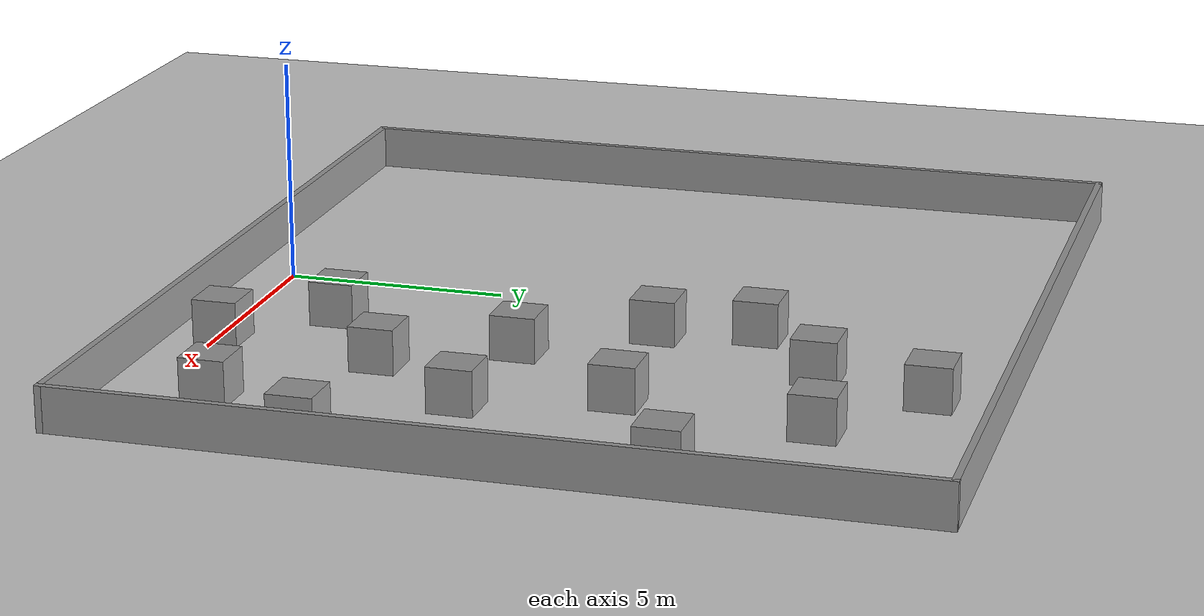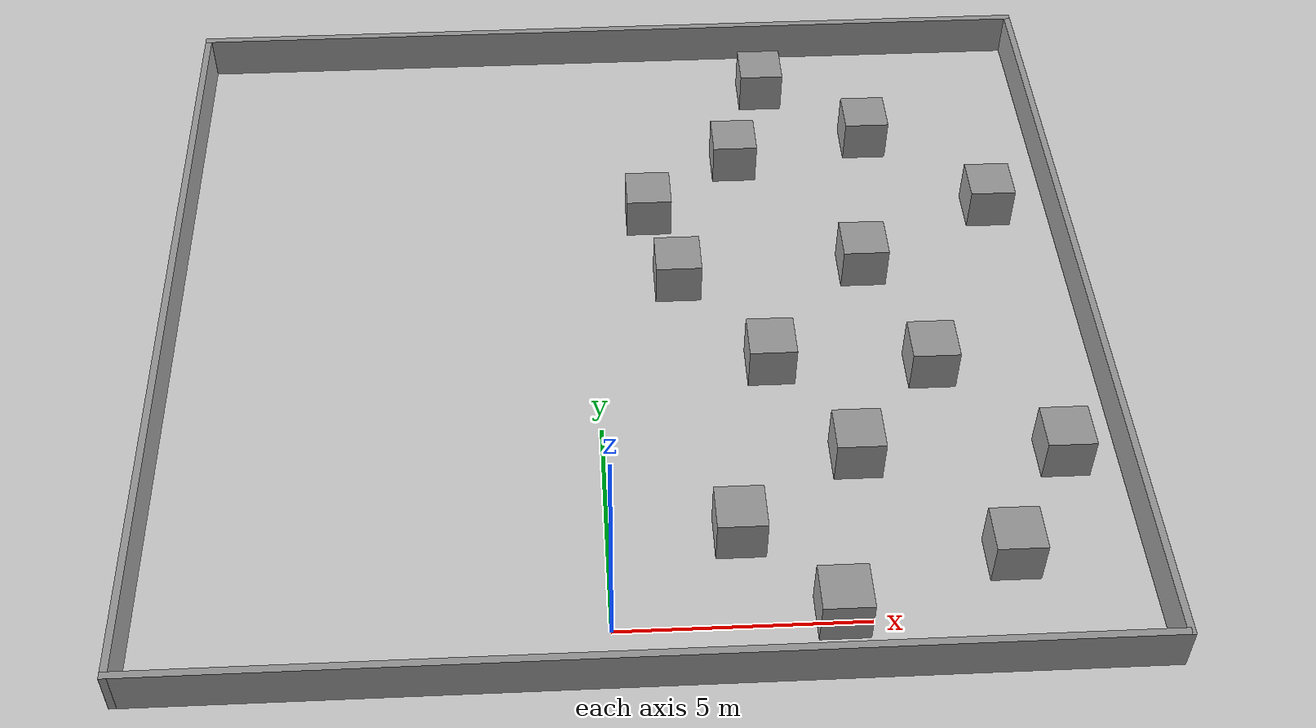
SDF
<sdf version="1.6">
 <world name="default">
  <model name="ground_plane">
   <static>1</static>
   <link name="link">
    <collision name="collision">
     <geometry><plane><normal>0 0 1</normal><size>100 100</size></plane></geometry>
     <surface><friction><ode><mu>100</mu><mu2>50</mu2></ode></friction></surface>
    </collision>
    <visual name="visual">
     <cast_shadows>0</cast_shadows>
     <geometry><plane><normal>0 0 1</normal><size>100 100</size></plane></geometry>
     <material>
      <script><uri>file://media/materials/scripts/gazebo.material</uri><name>Gazebo/Grey</name></script>
     </material>
    </visual>
   </link>
  </model>
  <model name="map1">
   <pose>0.69437 8.01298 0 0 -0 0</pose>
   <link name="Wall_0">
    <collision name="Wall_0_Collision">
     <geometry><box><size>20 0.15 1</size></box></geometry>
     <pose>0 0 0.5 0 -0 0</pose>
    </collision>
    <visual name="Wall_0_Visual">
     <pose>0 0 0.5 0 -0 0</pose>
     <geometry><box><size>20 0.15 1</size></box></geometry>
     <material>
      <script><uri>file://media/materials/scripts/gazebo.material</uri><name>Gazebo/Grey</name></script>
      <ambient>1 1 1 1</ambient>
     </material>
     <meta><layer>0</layer></meta>
    </visual>
    <pose>0 9.175 0 0 -0 0</pose>
   </link>
   <link name="Wall_3">
    <collision name="Wall_3_Collision">
     <geometry><box><size>18.5 0.15 1</size></box></geometry>
     <pose>0 0 0.5 0 -0 0</pose>
    </collision>
    <visual name="Wall_3_Visual">
     <pose>0 0 0.5 0 -0 0</pose>
     <geometry><box><size>18.5 0.15 1</size></box></geometry>
     <material>
      <script><uri>file://media/materials/scripts/gazebo.material</uri><name>Gazebo/Grey</name></script>
      <ambient>1 1 1 1</ambient>
     </material>
     <meta><layer>0</layer></meta>
    </visual>
    <pose>9.925 0 0 0 -0 -1.5708</pose>
   </link>
   <link name="Wall_4">
    <collision name="Wall_4_Collision">
     <geometry><box><size>20 0.15 1</size></box></geometry>
     <pose>0 0 0.5 0 -0 0</pose>
    </collision>
    <visual name="Wall_4_Visual">
     <pose>0 0 0.5 0 -0 0</pose>
     <geometry><box><size>20 0.15 1</size></box></geometry>
     <material>
      <script><uri>file://media/materials/scripts/gazebo.material</uri><name>Gazebo/Grey</name></script>
      <ambient>1 1 1 1</ambient>
     </material>
     <meta><layer>0</layer></meta>
    </visual>
    <pose>0 -9.175 0 0 -0 3.14159</pose>
   </link>
   <link name="Wall_5">
    <collision name="Wall_5_Collision">
     <geometry><box><size>18.5 0.15 1</size></box></geometry>
     <pose>0 0 0.5 0 -0 0</pose>
    </collision>
    <visual name="Wall_5_Visual">
     <pose>0 0 0.5 0 -0 0</pose>
     <geometry><box><size>18.5 0.15 1</size></box></geometry>
     <material>
      <script><uri>file://media/materials/scripts/gazebo.material</uri><name>Gazebo/Grey</name></script>
      <ambient>1 1 1 1</ambient>
     </material>
     <meta><layer>0</layer></meta>
    </visual>
    <pose>-9.925 0 0 0 -0 1.5708</pose>
   </link>
   <static>1</static>
  </model>
  <model name="box_1_clone_2">
   <link name="link_3">
    <inertial>
     <mass>1</mass>
     <inertia>
      <ixx>0.166667</ixx>
      <ixy>0</ixy>
      <ixz>0</ixz>
      <iyy>0.166667</iyy>
      <iyz>0</iyz>
      <izz>0.166667</izz>
     </inertia>
    </inertial>
    <pose>-0.10623 1.19174 0.5 0 -0 0</pose>
    <visual name="visual">
     <geometry><box><size>1 1 1</size></box></geometry>
     <material>
      <lighting>1</lighting>
      <script><uri>file://media/materials/scripts/gazebo.material</uri><name>Gazebo/Grey</name></script>
      <shader type="pixel"/>
     </material>
    </visual>
    <collision name="collision">
     <geometry><box><size>1 1 1</size></box></geometry>
     <surface>
      <friction>
       <ode><mu>1</mu><mu2>1</mu2><fdir1>0 0 0</fdir1><slip1>0</slip1><slip2>0</slip2></ode>
       <torsional>
        <coefficient>1</coefficient>
        <patch_radius>0</patch_radius>
        <surface_radius>0</surface_radius>
        <use_patch_radius>1</use_patch_radius>
        <ode><slip>0</slip></ode>
       </torsional>
      </friction>
      <bounce><restitution_coefficient>0</restitution_coefficient><threshold>1e+06</threshold></bounce>
      <contact>
       <collide_without_contact>0</collide_without_contact>
       <collide_without_contact_bitmask>1</collide_without_contact_bitmask>
       <collide_bitmask>1</collide_bitmask>
       <ode>
        <soft_cfm>0</soft_cfm>
        <soft_erp>0.2</soft_erp>
        <kp>1e+13</kp>
        <kd>1</kd>
        <max_vel>0.01</max_vel>
        <min_depth>0</min_depth>
       </ode>
       <bullet>
        <split_impulse>1</split_impulse>
        <split_impulse_penetration_threshold>-0.01</split_impulse_penetration_threshold>
        <soft_cfm>0</soft_cfm>
        <soft_erp>0.2</soft_erp>
        <kp>1e+13</kp>
        <kd>1</kd>
       </bullet>
      </contact>
     </surface>
    </collision>
   </link>
   <static>0</static>
   <pose>2.70949 0.917805 0 0 -0 0</pose>
  </model>
  <model name="box_1_clone_5">
   <link name="link_3">
    <inertial>
     <mass>1</mass>
     <inertia>
      <ixx>0.166667</ixx>
      <ixy>0</ixy>
      <ixz>0</ixz>
      <iyy>0.166667</iyy>
      <iyz>0</iyz>
      <izz>0.166667</izz>
     </inertia>
    </inertial>
    <pose>-0.10623 1.19174 0.5 0 -0 0</pose>
    <visual name="visual">
     <geometry><box><size>1 1 1</size></box></geometry>
     <material>
      <lighting>1</lighting>
      <script><uri>file://media/materials/scripts/gazebo.material</uri><name>Gazebo/Grey</name></script>
      <shader type="pixel"/>
     </material>
    </visual>
    <collision name="collision">
     <geometry><box><size>1 1 1</size></box></geometry>
     <surface>
      <friction>
       <ode><mu>1</mu><mu2>1</mu2><fdir1>0 0 0</fdir1><slip1>0</slip1><slip2>0</slip2></ode>
       <torsional>
        <coefficient>1</coefficient>
        <patch_radius>0</patch_radius>
        <surface_radius>0</surface_radius>
        <use_patch_radius>1</use_patch_radius>
        <ode><slip>0</slip></ode>
       </torsional>
      </friction>
      <bounce><restitution_coefficient>0</restitution_coefficient><threshold>1e+06</threshold></bounce>
      <contact>
       <collide_without_contact>0</collide_without_contact>
       <collide_without_contact_bitmask>1</collide_without_contact_bitmask>
       <collide_bitmask>1</collide_bitmask>
       <ode>
        <soft_cfm>0</soft_cfm>
        <soft_erp>0.2</soft_erp>
        <kp>1e+13</kp>
        <kd>1</kd>
        <max_vel>0.01</max_vel>
        <min_depth>0</min_depth>
       </ode>
       <bullet>
        <split_impulse>1</split_impulse>
        <split_impulse_penetration_threshold>-0.01</split_impulse_penetration_threshold>
        <soft_cfm>0</soft_cfm>
        <soft_erp>0.2</soft_erp>
        <kp>1e+13</kp>
        <kd>1</kd>
       </bullet>
      </contact>
     </surface>
    </collision>
   </link>
   <static>0</static>
   <pose>4.51321 -1.05576 0 0 -0 0</pose>
  </model>
  <model name="box_1_clone_8">
   <link name="link_3">
    <inertial>
     <mass>1</mass>
     <inertia>
      <ixx>0.166667</ixx>
      <ixy>0</ixy>
      <ixz>0</ixz>
      <iyy>0.166667</iyy>
      <iyz>0</iyz>
      <izz>0.166667</izz>
     </inertia>
    </inertial>
    <pose>-0.10623 1.19174 0.5 0 -0 0</pose>
    <visual name="visual">
     <geometry><box><size>1 1 1</size></box></geometry>
     <material>
      <lighting>1</lighting>
      <script><uri>file://media/materials/scripts/gazebo.material</uri><name>Gazebo/Grey</name></script>
      <shader type="pixel"/>
     </material>
    </visual>
    <collision name="collision">
     <geometry><box><size>1 1 1</size></box></geometry>
     <surface>
      <friction>
       <ode><mu>1</mu><mu2>1</mu2><fdir1>0 0 0</fdir1><slip1>0</slip1><slip2>0</slip2></ode>
       <torsional>
        <coefficient>1</coefficient>
        <patch_radius>0</patch_radius>
        <surface_radius>0</surface_radius>
        <use_patch_radius>1</use_patch_radius>
        <ode><slip>0</slip></ode>
       </torsional>
      </friction>
      <bounce><restitution_coefficient>0</restitution_coefficient><threshold>1e+06</threshold></bounce>
      <contact>
       <collide_without_contact>0</collide_without_contact>
       <collide_without_contact_bitmask>1</collide_without_contact_bitmask>
       <collide_bitmask>1</collide_bitmask>
       <ode>
        <soft_cfm>0</soft_cfm>
        <soft_erp>0.2</soft_erp>
        <kp>1e+13</kp>
        <kd>1</kd>
        <max_vel>0.01</max_vel>
        <min_depth>0</min_depth>
       </ode>
       <bullet>
        <split_impulse>1</split_impulse>
        <split_impulse_penetration_threshold>-0.01</split_impulse_penetration_threshold>
        <soft_cfm>0</soft_cfm>
        <soft_erp>0.2</soft_erp>
        <kp>1e+13</kp>
        <kd>1</kd>
       </bullet>
      </contact>
     </surface>
    </collision>
   </link>
   <static>0</static>
   <pose>1.41263 10.1207 0 0 -0 0</pose>
  </model>
  <model name="box_1_clone_9">
   <link name="link_3">
    <inertial>
     <mass>1</mass>
     <inertia>
      <ixx>0.166667</ixx>
      <ixy>0</ixy>
      <ixz>0</ixz>
      <iyy>0.166667</iyy>
      <iyz>0</iyz>
      <izz>0.166667</izz>
     </inertia>
    </inertial>
    <pose>-0.10623 1.19174 0.5 0 -0 0</pose>
    <visual name="visual">
     <geometry><box><size>1 1 1</size></box></geometry>
     <material>
      <lighting>1</lighting>
      <script><uri>file://media/materials/scripts/gazebo.material</uri><name>Gazebo/Grey</name></script>
      <shader type="pixel"/>
     </material>
    </visual>
    <collision name="collision">
     <geometry><box><size>1 1 1</size></box></geometry>
     <surface>
      <friction>
       <ode><mu>1</mu><mu2>1</mu2><fdir1>0 0 0</fdir1><slip1>0</slip1><slip2>0</slip2></ode>
       <torsional>
        <coefficient>1</coefficient>
        <patch_radius>0</patch_radius>
        <surface_radius>0</surface_radius>
        <use_patch_radius>1</use_patch_radius>
        <ode><slip>0</slip></ode>
       </torsional>
      </friction>
      <bounce><restitution_coefficient>0</restitution_coefficient><threshold>1e+06</threshold></bounce>
      <contact>
       <collide_without_contact>0</collide_without_contact>
       <collide_without_contact_bitmask>1</collide_without_contact_bitmask>
       <collide_bitmask>1</collide_bitmask>
       <ode>
        <soft_cfm>0</soft_cfm>
        <soft_erp>0.2</soft_erp>
        <kp>1e+13</kp>
        <kd>1</kd>
        <max_vel>0.01</max_vel>
        <min_depth>0</min_depth>
       </ode>
       <bullet>
        <split_impulse>1</split_impulse>
        <split_impulse_penetration_threshold>-0.01</split_impulse_penetration_threshold>
        <soft_cfm>0</soft_cfm>
        <soft_erp>0.2</soft_erp>
        <kp>1e+13</kp>
        <kd>1</kd>
       </bullet>
      </contact>
     </surface>
    </collision>
   </link>
   <static>0</static>
   <pose>3.51116 11.8544 0 0 -0 0</pose>
  </model>
  <model name="box_1_clone_12">
   <link name="link_3">
    <inertial>
     <mass>1</mass>
     <inertia>
      <ixx>0.166667</ixx>
      <ixy>0</ixy>
      <ixz>0</ixz>
      <iyy>0.166667</iyy>
      <iyz>0</iyz>
      <izz>0.166667</izz>
     </inertia>
    </inertial>
    <pose>-0.10623 1.19174 0.5 0 -0 0</pose>
    <visual name="visual">
     <geometry><box><size>1 1 1</size></box></geometry>
     <material>
      <lighting>1</lighting>
      <script><uri>file://media/materials/scripts/gazebo.material</uri><name>Gazebo/Grey</name></script>
      <shader type="pixel"/>
     </material>
    </visual>
    <collision name="collision">
     <geometry><box><size>1 1 1</size></box></geometry>
     <surface>
      <friction>
       <ode><mu>1</mu><mu2>1</mu2><fdir1>0 0 0</fdir1><slip1>0</slip1><slip2>0</slip2></ode>
       <torsional>
        <coefficient>1</coefficient>
        <patch_radius>0</patch_radius>
        <surface_radius>0</surface_radius>
        <use_patch_radius>1</use_patch_radius>
        <ode><slip>0</slip></ode>
       </torsional>
      </friction>
      <bounce><restitution_coefficient>0</restitution_coefficient><threshold>1e+06</threshold></bounce>
      <contact>
       <collide_without_contact>0</collide_without_contact>
       <collide_without_contact_bitmask>1</collide_without_contact_bitmask>
       <collide_bitmask>1</collide_bitmask>
       <ode>
        <soft_cfm>0</soft_cfm>
        <soft_erp>0.2</soft_erp>
        <kp>1e+13</kp>
        <kd>1</kd>
        <max_vel>0.01</max_vel>
        <min_depth>0</min_depth>
       </ode>
       <bullet>
        <split_impulse>1</split_impulse>
        <split_impulse_penetration_threshold>-0.01</split_impulse_penetration_threshold>
        <soft_cfm>0</soft_cfm>
        <soft_erp>0.2</soft_erp>
        <kp>1e+13</kp>
        <kd>1</kd>
       </bullet>
      </contact>
     </surface>
    </collision>
   </link>
   <static>0</static>
   <pose>6.67943 12.5304 0 0 -0 0</pose>
  </model>
  <model name="box_1_clone_13">
   <link name="link_3">
    <inertial>
     <mass>1</mass>
     <inertia>
      <ixx>0.166667</ixx>
      <ixy>0</ixy>
      <ixz>0</ixz>
      <iyy>0.166667</iyy>
      <iyz>0</iyz>
      <izz>0.166667</izz>
     </inertia>
    </inertial>
    <pose>-0.10623 1.19174 0.5 0 -0 0</pose>
    <visual name="visual">
     <geometry><box><size>1 1 1</size></box></geometry>
     <material>
      <lighting>1</lighting>
      <script><uri>file://media/materials/scripts/gazebo.material</uri><name>Gazebo/Grey</name></script>
      <shader type="pixel"/>
     </material>
    </visual>
    <collision name="collision">
     <geometry><box><size>1 1 1</size></box></geometry>
     <surface>
      <friction>
       <ode><mu>1</mu><mu2>1</mu2><fdir1>0 0 0</fdir1><slip1>0</slip1><slip2>0</slip2></ode>
       <torsional>
        <coefficient>1</coefficient>
        <patch_radius>0</patch_radius>
        <surface_radius>0</surface_radius>
        <use_patch_radius>1</use_patch_radius>
        <ode><slip>0</slip></ode>
       </torsional>
      </friction>
      <bounce><restitution_coefficient>0</restitution_coefficient><threshold>1e+06</threshold></bounce>
      <contact>
       <collide_without_contact>0</collide_without_contact>
       <collide_without_contact_bitmask>1</collide_without_contact_bitmask>
       <collide_bitmask>1</collide_bitmask>
       <ode>
        <soft_cfm>0</soft_cfm>
        <soft_erp>0.2</soft_erp>
        <kp>1e+13</kp>
        <kd>1</kd>
        <max_vel>0.01</max_vel>
        <min_depth>0</min_depth>
       </ode>
       <bullet>
        <split_impulse>1</split_impulse>
        <split_impulse_penetration_threshold>-0.01</split_impulse_penetration_threshold>
        <soft_cfm>0</soft_cfm>
        <soft_erp>0.2</soft_erp>
        <kp>1e+13</kp>
        <kd>1</kd>
       </bullet>
      </contact>
     </surface>
    </collision>
   </link>
   <static>0</static>
   <pose>4.37159 14.4177 0 0 -0 0</pose>
  </model>
  <model name="box_1_clone_clone_2">
   <link name="link_3">
    <inertial>
     <mass>1</mass>
     <inertia>
      <ixx>0.166667</ixx>
      <ixy>0</ixy>
      <ixz>0</ixz>
      <iyy>0.166667</iyy>
      <iyz>0</iyz>
      <izz>0.166667</izz>
     </inertia>
    </inertial>
    <pose>-0.10623 1.19174 0.5 0 -0 0</pose>
    <visual name="visual">
     <geometry><box><size>1 1 1</size></box></geometry>
     <material>
      <lighting>1</lighting>
      <script><uri>file://media/materials/scripts/gazebo.material</uri><name>Gazebo/Grey</name></script>
      <shader type="pixel"/>
     </material>
    </visual>
    <collision name="collision">
     <geometry><box><size>1 1 1</size></box></geometry>
     <surface>
      <friction>
       <ode><mu>1</mu><mu2>1</mu2><fdir1>0 0 0</fdir1><slip1>0</slip1><slip2>0</slip2></ode>
       <torsional>
        <coefficient>1</coefficient>
        <patch_radius>0</patch_radius>
        <surface_radius>0</surface_radius>
        <use_patch_radius>1</use_patch_radius>
        <ode><slip>0</slip></ode>
       </torsional>
      </friction>
      <bounce><restitution_coefficient>0</restitution_coefficient><threshold>1e+06</threshold></bounce>
      <contact>
       <collide_without_contact>0</collide_without_contact>
       <collide_without_contact_bitmask>1</collide_without_contact_bitmask>
       <collide_bitmask>1</collide_bitmask>
       <ode>
        <soft_cfm>0</soft_cfm>
        <soft_erp>0.2</soft_erp>
        <kp>1e+13</kp>
        <kd>1</kd>
        <max_vel>0.01</max_vel>
        <min_depth>0</min_depth>
       </ode>
       <bullet>
        <split_impulse>1</split_impulse>
        <split_impulse_penetration_threshold>-0.01</split_impulse_penetration_threshold>
        <soft_cfm>0</soft_cfm>
        <soft_erp>0.2</soft_erp>
        <kp>1e+13</kp>
        <kd>1</kd>
       </bullet>
      </contact>
     </surface>
    </collision>
   </link>
   <static>0</static>
   <pose>3.75986 5.40354 0 0 -0 0</pose>
  </model>
  <model name="box_1_clone_clone_3">
   <link name="link_3">
    <inertial>
     <mass>1</mass>
     <inertia>
      <ixx>0.166667</ixx>
      <ixy>0</ixy>
      <ixz>0</ixz>
      <iyy>0.166667</iyy>
      <iyz>0</iyz>
      <izz>0.166667</izz>
     </inertia>
    </inertial>
    <pose>-0.10623 1.19174 0.5 0 -0 0</pose>
    <visual name="visual">
     <geometry><box><size>1 1 1</size></box></geometry>
     <material>
      <lighting>1</lighting>
      <script><uri>file://media/materials/scripts/gazebo.material</uri><name>Gazebo/Grey</name></script>
      <shader type="pixel"/>
     </material>
    </visual>
    <collision name="collision">
     <geometry><box><size>1 1 1</size></box></geometry>
     <surface>
      <friction>
       <ode><mu>1</mu><mu2>1</mu2><fdir1>0 0 0</fdir1><slip1>0</slip1><slip2>0</slip2></ode>
       <torsional>
        <coefficient>1</coefficient>
        <patch_radius>0</patch_radius>
        <surface_radius>0</surface_radius>
        <use_patch_radius>1</use_patch_radius>
        <ode><slip>0</slip></ode>
       </torsional>
      </friction>
      <bounce><restitution_coefficient>0</restitution_coefficient><threshold>1e+06</threshold></bounce>
      <contact>
       <collide_without_contact>0</collide_without_contact>
       <collide_without_contact_bitmask>1</collide_without_contact_bitmask>
       <collide_bitmask>1</collide_bitmask>
       <ode>
        <soft_cfm>0</soft_cfm>
        <soft_erp>0.2</soft_erp>
        <kp>1e+13</kp>
        <kd>1</kd>
        <max_vel>0.01</max_vel>
        <min_depth>0</min_depth>
       </ode>
       <bullet>
        <split_impulse>1</split_impulse>
        <split_impulse_penetration_threshold>-0.01</split_impulse_penetration_threshold>
        <soft_cfm>0</soft_cfm>
        <soft_erp>0.2</soft_erp>
        <kp>1e+13</kp>
        <kd>1</kd>
       </bullet>
      </contact>
     </surface>
    </collision>
   </link>
   <static>0</static>
   <pose>1.94598 7.97336 0 0 -0 0</pose>
  </model>
  <model name="box_1_clone_clone_4">
   <link name="link_3">
    <inertial>
     <mass>1</mass>
     <inertia>
      <ixx>0.166667</ixx>
      <ixy>0</ixy>
      <ixz>0</ixz>
      <iyy>0.166667</iyy>
      <iyz>0</iyz>
      <izz>0.166667</izz>
     </inertia>
    </inertial>
    <pose>-0.10623 1.19174 0.5 0 -0 0</pose>
    <visual name="visual">
     <geometry><box><size>1 1 1</size></box></geometry>
     <material>
      <lighting>1</lighting>
      <script><uri>file://media/materials/scripts/gazebo.material</uri><name>Gazebo/Grey</name></script>
      <shader type="pixel"/>
     </material>
    </visual>
    <collision name="collision">
     <geometry><box><size>1 1 1</size></box></geometry>
     <surface>
      <friction>
       <ode><mu>1</mu><mu2>1</mu2><fdir1>0 0 0</fdir1><slip1>0</slip1><slip2>0</slip2></ode>
       <torsional>
        <coefficient>1</coefficient>
        <patch_radius>0</patch_radius>
        <surface_radius>0</surface_radius>
        <use_patch_radius>1</use_patch_radius>
        <ode><slip>0</slip></ode>
       </torsional>
      </friction>
      <bounce><restitution_coefficient>0</restitution_coefficient><threshold>1e+06</threshold></bounce>
      <contact>
       <collide_without_contact>0</collide_without_contact>
       <collide_without_contact_bitmask>1</collide_without_contact_bitmask>
       <collide_bitmask>1</collide_bitmask>
       <ode>
        <soft_cfm>0</soft_cfm>
        <soft_erp>0.2</soft_erp>
        <kp>1e+13</kp>
        <kd>1</kd>
        <max_vel>0.01</max_vel>
        <min_depth>0</min_depth>
       </ode>
       <bullet>
        <split_impulse>1</split_impulse>
        <split_impulse_penetration_threshold>-0.01</split_impulse_penetration_threshold>
        <soft_cfm>0</soft_cfm>
        <soft_erp>0.2</soft_erp>
        <kp>1e+13</kp>
        <kd>1</kd>
       </bullet>
      </contact>
     </surface>
    </collision>
   </link>
   <static>0</static>
   <pose>7.16075 5.16116 0 0 -0 0</pose>
  </model>
  <model name="box_1_clone_clone_5">
   <link name="link_3">
    <inertial>
     <mass>1</mass>
     <inertia>
      <ixx>0.166667</ixx>
      <ixy>0</ixy>
      <ixz>0</ixz>
      <iyy>0.166667</iyy>
      <iyz>0</iyz>
      <izz>0.166667</izz>
     </inertia>
    </inertial>
    <pose>-0.10623 1.19174 0.5 0 -0 0</pose>
    <visual name="visual">
     <geometry><box><size>1 1 1</size></box></geometry>
     <material>
      <lighting>1</lighting>
      <script><uri>file://media/materials/scripts/gazebo.material</uri><name>Gazebo/Grey</name></script>
      <shader type="pixel"/>
     </material>
    </visual>
    <collision name="collision">
     <geometry><box><size>1 1 1</size></box></geometry>
     <surface>
      <friction>
       <ode><mu>1</mu><mu2>1</mu2><fdir1>0 0 0</fdir1><slip1>0</slip1><slip2>0</slip2></ode>
       <torsional>
        <coefficient>1</coefficient>
        <patch_radius>0</patch_radius>
        <surface_radius>0</surface_radius>
        <use_patch_radius>1</use_patch_radius>
        <ode><slip>0</slip></ode>
       </torsional>
      </friction>
      <bounce><restitution_coefficient>0</restitution_coefficient><threshold>1e+06</threshold></bounce>
      <contact>
       <collide_without_contact>0</collide_without_contact>
       <collide_without_contact_bitmask>1</collide_without_contact_bitmask>
       <collide_bitmask>1</collide_bitmask>
       <ode>
        <soft_cfm>0</soft_cfm>
        <soft_erp>0.2</soft_erp>
        <kp>1e+13</kp>
        <kd>1</kd>
        <max_vel>0.01</max_vel>
        <min_depth>0</min_depth>
       </ode>
       <bullet>
        <split_impulse>1</split_impulse>
        <split_impulse_penetration_threshold>-0.01</split_impulse_penetration_threshold>
        <soft_cfm>0</soft_cfm>
        <soft_erp>0.2</soft_erp>
        <kp>1e+13</kp>
        <kd>1</kd>
       </bullet>
      </contact>
     </surface>
    </collision>
   </link>
   <static>0</static>
   <pose>6.09938 8.2637 0 0 -0 0</pose>
  </model>
  <model name="box_1_clone_clone_6">
   <link name="link_3">
    <inertial>
     <mass>1</mass>
     <inertia>
      <ixx>0.166667</ixx>
      <ixy>0</ixy>
      <ixz>0</ixz>
      <iyy>0.166667</iyy>
      <iyz>0</iyz>
      <izz>0.166667</izz>
     </inertia>
    </inertial>
    <pose>-0.10623 1.19174 0.5 0 -0 0</pose>
    <visual name="visual">
     <geometry><box><size>1 1 1</size></box></geometry>
     <material>
      <lighting>1</lighting>
      <script><uri>file://media/materials/scripts/gazebo.material</uri><name>Gazebo/Grey</name></script>
      <shader type="pixel"/>
     </material>
    </visual>
    <collision name="collision">
     <geometry><box><size>1 1 1</size></box></geometry>
     <surface>
      <friction>
       <ode><mu>1</mu><mu2>1</mu2><fdir1>0 0 0</fdir1><slip1>0</slip1><slip2>0</slip2></ode>
       <torsional>
        <coefficient>1</coefficient>
        <patch_radius>0</patch_radius>
        <surface_radius>0</surface_radius>
        <use_patch_radius>1</use_patch_radius>
        <ode><slip>0</slip></ode>
       </torsional>
      </friction>
      <bounce><restitution_coefficient>0</restitution_coefficient><threshold>1e+06</threshold></bounce>
      <contact>
       <collide_without_contact>0</collide_without_contact>
       <collide_without_contact_bitmask>1</collide_without_contact_bitmask>
       <collide_bitmask>1</collide_bitmask>
       <ode>
        <soft_cfm>0</soft_cfm>
        <soft_erp>0.2</soft_erp>
        <kp>1e+13</kp>
        <kd>1</kd>
        <max_vel>0.01</max_vel>
        <min_depth>0</min_depth>
       </ode>
       <bullet>
        <split_impulse>1</split_impulse>
        <split_impulse_penetration_threshold>-0.01</split_impulse_penetration_threshold>
        <soft_cfm>0</soft_cfm>
        <soft_erp>0.2</soft_erp>
        <kp>1e+13</kp>
        <kd>1</kd>
       </bullet>
      </contact>
     </surface>
    </collision>
   </link>
   <static>0</static>
   <pose>5.26681 2.78551 0 0 -0 0</pose>
  </model>
  <model name="box_1_clone_clone_7">
   <link name="link_3">
    <inertial>
     <mass>1</mass>
     <inertia>
      <ixx>0.166667</ixx>
      <ixy>0</ixy>
      <ixz>0</ixz>
      <iyy>0.166667</iyy>
      <iyz>0</iyz>
      <izz>0.166667</izz>
     </inertia>
    </inertial>
    <pose>-0.10623 1.19174 0.5 0 -0 0</pose>
    <visual name="visual">
     <geometry><box><size>1 1 1</size></box></geometry>
     <material>
      <lighting>1</lighting>
      <script><uri>file://media/materials/scripts/gazebo.material</uri><name>Gazebo/Grey</name></script>
      <shader type="pixel"/>
     </material>
    </visual>
    <collision name="collision">
     <geometry><box><size>1 1 1</size></box></geometry>
     <surface>
      <friction>
       <ode><mu>1</mu><mu2>1</mu2><fdir1>0 0 0</fdir1><slip1>0</slip1><slip2>0</slip2></ode>
       <torsional>
        <coefficient>1</coefficient>
        <patch_radius>0</patch_radius>
        <surface_radius>0</surface_radius>
        <use_patch_radius>1</use_patch_radius>
        <ode><slip>0</slip></ode>
       </torsional>
      </friction>
      <bounce><restitution_coefficient>0</restitution_coefficient><threshold>1e+06</threshold></bounce>
      <contact>
       <collide_without_contact>0</collide_without_contact>
       <collide_without_contact_bitmask>1</collide_without_contact_bitmask>
       <collide_bitmask>1</collide_bitmask>
       <ode>
        <soft_cfm>0</soft_cfm>
        <soft_erp>0.2</soft_erp>
        <kp>1e+13</kp>
        <kd>1</kd>
        <max_vel>0.01</max_vel>
        <min_depth>0</min_depth>
       </ode>
       <bullet>
        <split_impulse>1</split_impulse>
        <split_impulse_penetration_threshold>-0.01</split_impulse_penetration_threshold>
        <soft_cfm>0</soft_cfm>
        <soft_erp>0.2</soft_erp>
        <kp>1e+13</kp>
        <kd>1</kd>
       </bullet>
      </contact>
     </surface>
    </collision>
   </link>
   <static>0</static>
   <pose>8.00041 0.143699 0 0 -0 0</pose>
  </model>
  <model name="box_1_clone_clone_9">
   <link name="link_3">
    <inertial>
     <mass>1</mass>
     <inertia>
      <ixx>0.166667</ixx>
      <ixy>0</ixy>
      <ixz>0</ixz>
      <iyy>0.166667</iyy>
      <iyz>0</iyz>
      <izz>0.166667</izz>
     </inertia>
    </inertial>
    <pose>-0.10623 1.19174 0.5 0 -0 0</pose>
    <visual name="visual">
     <geometry><box><size>1 1 1</size></box></geometry>
     <material>
      <lighting>1</lighting>
      <script><uri>file://media/materials/scripts/gazebo.material</uri><name>Gazebo/Grey</name></script>
      <shader type="pixel"/>
     </material>
    </visual>
    <collision name="collision">
     <geometry><box><size>1 1 1</size></box></geometry>
     <surface>
      <friction>
       <ode><mu>1</mu><mu2>1</mu2><fdir1>0 0 0</fdir1><slip1>0</slip1><slip2>0</slip2></ode>
       <torsional>
        <coefficient>1</coefficient>
        <patch_radius>0</patch_radius>
        <surface_radius>0</surface_radius>
        <use_patch_radius>1</use_patch_radius>
        <ode><slip>0</slip></ode>
       </torsional>
      </friction>
      <bounce><restitution_coefficient>0</restitution_coefficient><threshold>1e+06</threshold></bounce>
      <contact>
       <collide_without_contact>0</collide_without_contact>
       <collide_without_contact_bitmask>1</collide_without_contact_bitmask>
       <collide_bitmask>1</collide_bitmask>
       <ode>
        <soft_cfm>0</soft_cfm>
        <soft_erp>0.2</soft_erp>
        <kp>1e+13</kp>
        <kd>1</kd>
        <max_vel>0.01</max_vel>
        <min_depth>0</min_depth>
       </ode>
       <bullet>
        <split_impulse>1</split_impulse>
        <split_impulse_penetration_threshold>-0.01</split_impulse_penetration_threshold>
        <soft_cfm>0</soft_cfm>
        <soft_erp>0.2</soft_erp>
        <kp>1e+13</kp>
        <kd>1</kd>
       </bullet>
      </contact>
     </surface>
    </collision>
   </link>
   <static>0</static>
   <pose>9.23268 10.0507 0 0 -0 0</pose>
  </model>
  <model name="box_1_clone_clone_10">
   <link name="link_3">
    <inertial>
     <mass>1</mass>
     <inertia>
      <ixx>0.166667</ixx>
      <ixy>0</ixy>
      <ixz>0</ixz>
      <iyy>0.166667</iyy>
      <iyz>0</iyz>
      <izz>0.166667</izz>
     </inertia>
    </inertial>
    <pose>-0.10623 1.19174 0.5 0 -0 0</pose>
    <visual name="visual">
     <geometry><box><size>1 1 1</size></box></geometry>
     <material>
      <lighting>1</lighting>
      <script><uri>file://media/materials/scripts/gazebo.material</uri><name>Gazebo/Grey</name></script>
      <shader type="pixel"/>
     </material>
    </visual>
    <collision name="collision">
     <geometry><box><size>1 1 1</size></box></geometry>
     <surface>
      <friction>
       <ode><mu>1</mu><mu2>1</mu2><fdir1>0 0 0</fdir1><slip1>0</slip1><slip2>0</slip2></ode>
       <torsional>
        <coefficient>1</coefficient>
        <patch_radius>0</patch_radius>
        <surface_radius>0</surface_radius>
        <use_patch_radius>1</use_patch_radius>
        <ode><slip>0</slip></ode>
       </torsional>
      </friction>
      <bounce><restitution_coefficient>0</restitution_coefficient><threshold>1e+06</threshold></bounce>
      <contact>
       <collide_without_contact>0</collide_without_contact>
       <collide_without_contact_bitmask>1</collide_without_contact_bitmask>
       <collide_bitmask>1</collide_bitmask>
       <ode>
        <soft_cfm>0</soft_cfm>
        <soft_erp>0.2</soft_erp>
        <kp>1e+13</kp>
        <kd>1</kd>
        <max_vel>0.01</max_vel>
        <min_depth>0</min_depth>
       </ode>
       <bullet>
        <split_impulse>1</split_impulse>
        <split_impulse_penetration_threshold>-0.01</split_impulse_penetration_threshold>
        <soft_cfm>0</soft_cfm>
        <soft_erp>0.2</soft_erp>
        <kp>1e+13</kp>
        <kd>1</kd>
       </bullet>
      </contact>
     </surface>
    </collision>
   </link>
   <static>0</static>
   <pose>9.48992 2.64181 0 0 -0 0</pose>
  </model>
 </world>
</sdf>
